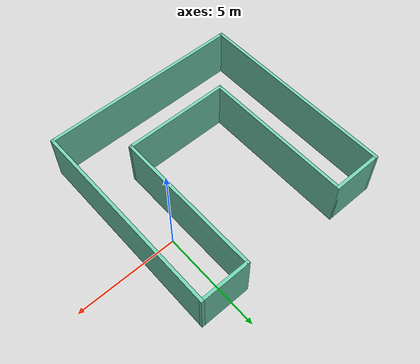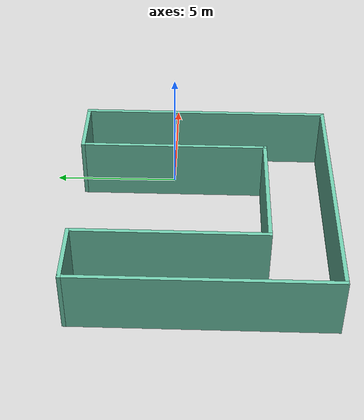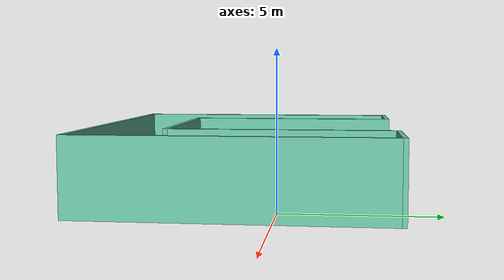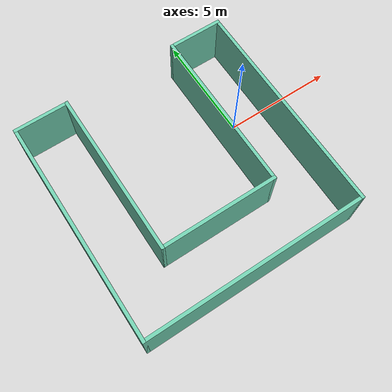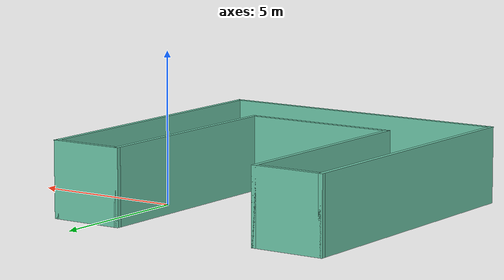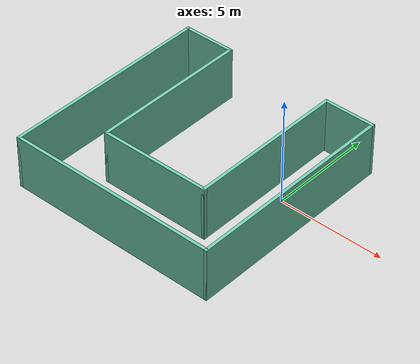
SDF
<?xml version='1.0'?>
<sdf version='1.6'>
  <model name='uworld'>
    <pose frame=''>-3.40559 -1.23141 0 0 -0 0</pose>
    <link name='Wall_17'>
      <collision name='Wall_17_Collision'>
        <geometry>
          <box>
            <size>2.5 0.15 2.5</size>
          </box>
        </geometry>
        <pose frame=''>0 0 1.25 0 -0 0</pose>
      </collision>
      <visual name='Wall_17_Visual'>
        <pose frame=''>0 0 1.25 0 -0 0</pose>
        <geometry>
          <box>
            <size>2.5 0.15 2.5</size>
          </box>
        </geometry>
        <material>
          <script>
            <uri>file://media/materials/scripts/gazebo.material</uri>
            <name>Gazebo/Grey</name>
          </script>
          <ambient>0.435294 0.796078 0.67451 1</ambient>
        </material>
        <meta>
          <layer>0</layer>
        </meta>
      </visual>
      <pose frame=''>-3.75 4.925 0 0 -0 0</pose>
    </link>
    <link name='Wall_19'>
      <collision name='Wall_19_Collision'>
        <geometry>
          <box>
            <size>10 0.15 2.5</size>
          </box>
        </geometry>
        <pose frame=''>0 0 1.25 0 -0 0</pose>
      </collision>
      <visual name='Wall_19_Visual'>
        <pose frame=''>0 0 1.25 0 -0 0</pose>
        <geometry>
          <box>
            <size>10 0.15 2.5</size>
          </box>
        </geometry>
        <material>
          <script>
            <uri>file://media/materials/scripts/gazebo.material</uri>
            <name>Gazebo/Grey</name>
          </script>
          <ambient>0.435294 0.796078 0.67451 1</ambient>
        </material>
        <meta>
          <layer>0</layer>
        </meta>
      </visual>
      <pose frame=''>-4.925 0 0 0 0 -1.5708</pose>
    </link>
    <link name='Wall_20'>
      <collision name='Wall_20_Collision'>
        <geometry>
          <box>
            <size>10 0.15 2.5</size>
          </box>
        </geometry>
        <pose frame=''>0 0 1.25 0 -0 0</pose>
      </collision>
      <visual name='Wall_20_Visual'>
        <pose frame=''>0 0 1.25 0 -0 0</pose>
        <geometry>
          <box>
            <size>10 0.15 2.5</size>
          </box>
        </geometry>
        <material>
          <script>
            <uri>file://media/materials/scripts/gazebo.material</uri>
            <name>Gazebo/Grey</name>
          </script>
          <ambient>0.435294 0.796078 0.67451 1</ambient>
        </material>
        <meta>
          <layer>0</layer>
        </meta>
      </visual>
      <pose frame=''>0 -4.925 0 0 -0 0</pose>
    </link>
    <link name='Wall_21'>
      <collision name='Wall_21_Collision'>
        <geometry>
          <box>
            <size>10 0.15 2.5</size>
          </box>
        </geometry>
        <pose frame=''>0 0 1.25 0 -0 0</pose>
      </collision>
      <visual name='Wall_21_Visual'>
        <pose frame=''>0 0 1.25 0 -0 0</pose>
        <geometry>
          <box>
            <size>10 0.15 2.5</size>
          </box>
        </geometry>
        <material>
          <script>
            <uri>file://media/materials/scripts/gazebo.material</uri>
            <name>Gazebo/Grey</name>
          </script>
          <ambient>0.435294 0.796078 0.67451 1</ambient>
        </material>
        <meta>
          <layer>0</layer>
        </meta>
      </visual>
      <pose frame=''>4.925 0 0 0 -0 1.5708</pose>
    </link>
    <link name='Wall_22'>
      <collision name='Wall_22_Collision'>
        <geometry>
          <box>
            <size>2.5 0.15 2.5</size>
          </box>
        </geometry>
        <pose frame=''>0 0 1.25 0 -0 0</pose>
      </collision>
      <visual name='Wall_22_Visual'>
        <pose frame=''>0 0 1.25 0 -0 0</pose>
        <geometry>
          <box>
            <size>2.5 0.15 2.5</size>
          </box>
        </geometry>
        <material>
          <script>
            <uri>file://media/materials/scripts/gazebo.material</uri>
            <name>Gazebo/Grey</name>
          </script>
          <ambient>0.435294 0.796078 0.67451 1</ambient>
        </material>
        <meta>
          <layer>0</layer>
        </meta>
      </visual>
      <pose frame=''>3.75 4.925 0 0 -0 3.14159</pose>
    </link>
    <link name='Wall_25'>
      <collision name='Wall_25_Collision'>
        <geometry>
          <box>
            <size>7.5 0.15 2.5</size>
          </box>
        </geometry>
        <pose frame=''>0 0 1.25 0 -0 0</pose>
      </collision>
      <visual name='Wall_25_Visual'>
        <pose frame=''>0 0 1.25 0 -0 0</pose>
        <geometry>
          <box>
            <size>7.5 0.15 2.5</size>
          </box>
        </geometry>
        <material>
          <script>
            <uri>file://media/materials/scripts/gazebo.material</uri>
            <name>Gazebo/Grey</name>
          </script>
          <ambient>0.435294 0.796078 0.67451 1</ambient>
        </material>
        <meta>
          <layer>0</layer>
        </meta>
      </visual>
      <pose frame=''>2.575 1.25 0 0 0 -1.5708</pose>
    </link>
    <link name='Wall_27'>
      <collision name='Wall_27_Collision'>
        <geometry>
          <box>
            <size>7.5 0.15 2.5</size>
          </box>
        </geometry>
        <pose frame=''>0 0 1.25 0 -0 0</pose>
      </collision>
      <visual name='Wall_27_Visual'>
        <pose frame=''>0 0 1.25 0 -0 0</pose>
        <geometry>
          <box>
            <size>7.5 0.15 2.5</size>
          </box>
        </geometry>
        <material>
          <script>
            <uri>file://media/materials/scripts/gazebo.material</uri>
            <name>Gazebo/Grey</name>
          </script>
          <ambient>0.435294 0.796078 0.67451 1</ambient>
        </material>
        <meta>
          <layer>0</layer>
        </meta>
      </visual>
      <pose frame=''>-2.575 1.25 0 0 0 -1.5708</pose>
    </link>
    <link name='Wall_28'>
      <collision name='Wall_28_Collision'>
        <geometry>
          <box>
            <size>5.3 0.15 2.5</size>
          </box>
        </geometry>
        <pose frame=''>0 0 1.25 0 -0 0</pose>
      </collision>
      <visual name='Wall_28_Visual'>
        <pose frame=''>0 0 1.25 0 -0 0</pose>
        <geometry>
          <box>
            <size>5.3 0.15 2.5</size>
          </box>
        </geometry>
        <material>
          <script>
            <uri>file://media/materials/scripts/gazebo.material</uri>
            <name>Gazebo/Grey</name>
          </script>
          <ambient>0.435294 0.796078 0.67451 1</ambient>
        </material>
        <meta>
          <layer>0</layer>
        </meta>
      </visual>
      <pose frame=''>0 -2.425 0 0 -0 0</pose>
    </link>
    <static>1</static>
  </model>
</sdf>
